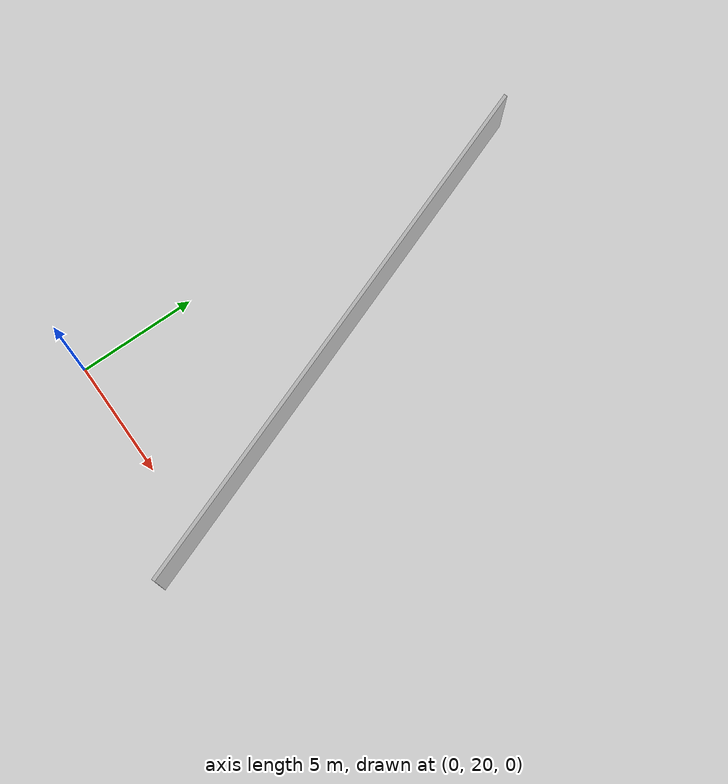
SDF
<?xml version="1.0" ?>
<sdf version="1.6">
  <model name="sps_0418">
    <pose frame="">0 0 0 0 -0 0</pose>
    <static>0</static>
    <self_collide>0</self_collide>
    <allow_auto_disable>0</allow_auto_disable>
    <link name="Wall266">
      <kinematic>0</kinematic>
      <gravity>1</gravity>
      <self_collide>0</self_collide>
      <collision name="collision">
        <geometry>
          <box>
            <size>23.746 0.15 2.5</size>
          </box>
        </geometry>
        <pose frame="">0 0 0 0 -0 0</pose>
      </collision>
      <visual name="visual">
        <geometry>
          <box>
            <size>23.746 0.15 2.5</size>
          </box>
        </geometry>
        <pose frame="">0 0 0 0 -0 0</pose>
        <cast_shadows>1</cast_shadows>
        <transparency>0.0</transparency>
      </visual>
      <pose frame="">5.03579 29.072 1.25 0 0 -1.22716</pose>
    </link>
  </model>
</sdf>
